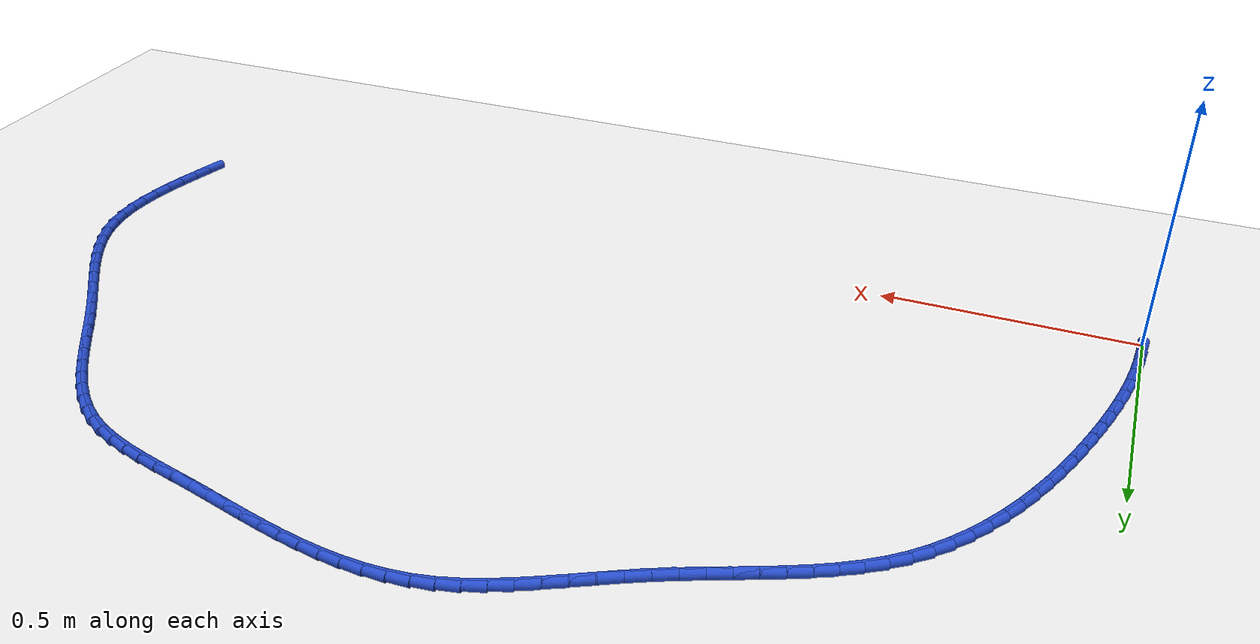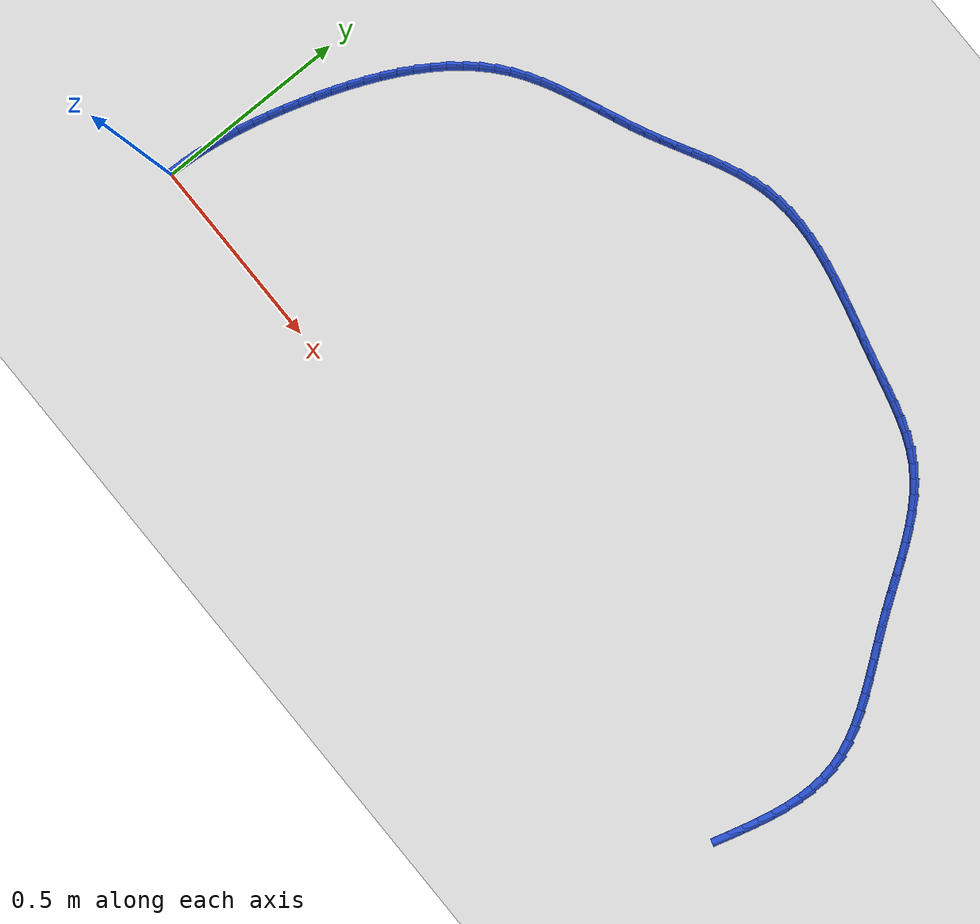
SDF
<sdf version="1.6">
 <world name="default">
  <model name="ground_plane">
   <static>1</static>
   <link name="link">
    <collision name="collision">
     <geometry><plane><normal>0 0 1</normal><size>100 100</size></plane></geometry>
     <surface><friction><ode><mu>100</mu><mu2>50</mu2></ode></friction></surface>
    </collision>
    <visual name="visual">
     <cast_shadows>0</cast_shadows>
     <geometry><plane><normal>0 0 1</normal><size>100 100</size></plane></geometry>
     <material>
      <script><uri>file://media/materials/scripts/gazebo.material</uri><name>Gazebo/WhiteGlow</name></script>
     </material>
    </visual>
   </link>
  </model>
  <model name="line">
   <link name="link_1">
    <pose>0.0013572058669911254 0.03960585726526232 0.01 0 1.57 1.4931692959205023</pose>
    <collision name="collision">
     <geometry><cylinder><radius>0.01</radius><length>0.08</length></cylinder></geometry>
    </collision>
    <visual name="visual">
     <material>
      <script><name>Gazebo/Blue</name><uri>file://media/materials/scripts/gazebo.material</uri></script>
     </material>
     <geometry><cylinder><radius>0.01</radius><length>0.08</length></cylinder></geometry>
    </visual>
   </link>
   <link name="link_2">
    <pose>0.004425729709717585 0.07905548884631912 0.01 0 1.57 1.4524673663735053</pose>
    <collision name="collision">
     <geometry><cylinder><radius>0.01</radius><length>0.08</length></cylinder></geometry>
    </collision>
    <visual name="visual">
     <material>
      <script><name>Gazebo/Blue</name><uri>file://media/materials/scripts/gazebo.material</uri></script>
     </material>
     <geometry><cylinder><radius>0.01</radius><length>0.08</length></cylinder></geometry>
    </visual>
   </link>
   <link name="link_3">
    <pose>0.00910084058042875 0.11838035537991416 0.01 0 1.57 1.4146294556732217</pose>
    <collision name="collision">
     <geometry><cylinder><radius>0.01</radius><length>0.08</length></cylinder></geometry>
    </collision>
    <visual name="visual">
     <material>
      <script><name>Gazebo/Blue</name><uri>file://media/materials/scripts/gazebo.material</uri></script>
     </material>
     <geometry><cylinder><radius>0.01</radius><length>0.08</length></cylinder></geometry>
    </visual>
   </link>
   <link name="link_4">
    <pose>0.015277807531374013 0.1576119175027912 0.01 0 1.57 1.3797876665798456</pose>
    <collision name="collision">
     <geometry><cylinder><radius>0.01</radius><length>0.08</length></cylinder></geometry>
    </collision>
    <visual name="visual">
     <material>
      <script><name>Gazebo/Blue</name><uri>file://media/materials/scripts/gazebo.material</uri></script>
     </material>
     <geometry><cylinder><radius>0.01</radius><length>0.08</length></cylinder></geometry>
    </visual>
   </link>
   <link name="link_5">
    <pose>0.022851899614802784 0.19678163585169395 0.01 0 1.57 1.3480199460998947</pose>
    <collision name="collision">
     <geometry><cylinder><radius>0.01</radius><length>0.08</length></cylinder></geometry>
    </collision>
    <visual name="visual">
     <material>
      <script><name>Gazebo/Blue</name><uri>file://media/materials/scripts/gazebo.material</uri></script>
     </material>
     <geometry><cylinder><radius>0.01</radius><length>0.08</length></cylinder></geometry>
    </visual>
   </link>
   <link name="link_6">
    <pose>0.03171838588296445 0.23592097106336612 0.01 0 1.57 1.3193586703346116</pose>
    <collision name="collision">
     <geometry><cylinder><radius>0.01</radius><length>0.08</length></cylinder></geometry>
    </collision>
    <visual name="visual">
     <material>
      <script><name>Gazebo/Blue</name><uri>file://media/materials/scripts/gazebo.material</uri></script>
     </material>
     <geometry><cylinder><radius>0.01</radius><length>0.08</length></cylinder></geometry>
    </visual>
   </link>
   <link name="link_7">
    <pose>0.04177253538810839 0.27506138377455147 0.01 0 1.57 1.2937996988057787</pose>
    <collision name="collision">
     <geometry><cylinder><radius>0.01</radius><length>0.08</length></cylinder></geometry>
    </collision>
    <visual name="visual">
     <material>
      <script><name>Gazebo/Blue</name><uri>file://media/materials/scripts/gazebo.material</uri></script>
     </material>
     <geometry><cylinder><radius>0.01</radius><length>0.08</length></cylinder></geometry>
    </visual>
   </link>
   <link name="link_8">
    <pose>0.05290961718248402 0.3142343346219937 0.01 0 1.57 1.2713111083744824</pose>
    <collision name="collision">
     <geometry><cylinder><radius>0.01</radius><length>0.08</length></cylinder></geometry>
    </collision>
    <visual name="visual">
     <material>
      <script><name>Gazebo/Blue</name><uri>file://media/materials/scripts/gazebo.material</uri></script>
     </material>
     <geometry><cylinder><radius>0.01</radius><length>0.08</length></cylinder></geometry>
    </visual>
   </link>
   <link name="link_9">
    <pose>0.06502490031834073 0.3534712842424365 0.01 0 1.57 1.251303823343375</pose>
    <collision name="collision">
     <geometry><cylinder><radius>0.01</radius><length>0.08</length></cylinder></geometry>
    </collision>
    <visual name="visual">
     <material>
      <script><name>Gazebo/Blue</name><uri>file://media/materials/scripts/gazebo.material</uri></script>
     </material>
     <geometry><cylinder><radius>0.01</radius><length>0.08</length></cylinder></geometry>
    </visual>
   </link>
   <link name="link_10">
    <pose>0.07803020135055229 0.39278285707645455 0.01 0 1.57 1.2297427222754966</pose>
    <collision name="collision">
     <geometry><cylinder><radius>0.01</radius><length>0.08</length></cylinder></geometry>
    </collision>
    <visual name="visual">
     <material>
      <script><name>Gazebo/Blue</name><uri>file://media/materials/scripts/gazebo.material</uri></script>
     </material>
     <geometry><cylinder><radius>0.01</radius><length>0.08</length></cylinder></geometry>
    </visual>
   </link>
   <link name="link_11">
    <pose>0.09195876311424779 0.43202678066815897 0.01 0 1.57 1.2046900887845857</pose>
    <collision name="collision">
     <geometry><cylinder><radius>0.01</radius><length>0.08</length></cylinder></geometry>
    </collision>
    <visual name="visual">
     <material>
      <script><name>Gazebo/Blue</name><uri>file://media/materials/scripts/gazebo.material</uri></script>
     </material>
     <geometry><cylinder><radius>0.01</radius><length>0.08</length></cylinder></geometry>
    </visual>
   </link>
   <link name="link_12">
    <pose>0.10689791344220063 0.4709926801025592 0.01 0 1.57 1.1758911015616755</pose>
    <collision name="collision">
     <geometry><cylinder><radius>0.01</radius><length>0.08</length></cylinder></geometry>
    </collision>
    <visual name="visual">
     <material>
      <script><name>Gazebo/Blue</name><uri>file://media/materials/scripts/gazebo.material</uri></script>
     </material>
     <geometry><cylinder><radius>0.01</radius><length>0.08</length></cylinder></geometry>
    </visual>
   </link>
   <link name="link_13">
    <pose>0.12293522811182156 0.5094698682590566 0.01 0 1.57 1.1430432878604047</pose>
    <collision name="collision">
     <geometry><cylinder><radius>0.01</radius><length>0.08</length></cylinder></geometry>
    </collision>
    <visual name="visual">
     <material>
      <script><name>Gazebo/Blue</name><uri>file://media/materials/scripts/gazebo.material</uri></script>
     </material>
     <geometry><cylinder><radius>0.01</radius><length>0.08</length></cylinder></geometry>
    </visual>
   </link>
   <link name="link_14">
    <pose>0.1401582829005215 0.547247658017053 0.01 0 1.57 1.1057930347961435</pose>
    <collision name="collision">
     <geometry><cylinder><radius>0.01</radius><length>0.08</length></cylinder></geometry>
    </collision>
    <visual name="visual">
     <material>
      <script><name>Gazebo/Blue</name><uri>file://media/materials/scripts/gazebo.material</uri></script>
     </material>
     <geometry><cylinder><radius>0.01</radius><length>0.08</length></cylinder></geometry>
    </visual>
   </link>
   <link name="link_15">
    <pose>0.15865465358571135 0.5841153622559501 0.01 0 1.57 1.063743657000141</pose>
    <collision name="collision">
     <geometry><cylinder><radius>0.01</radius><length>0.08</length></cylinder></geometry>
    </collision>
    <visual name="visual">
     <material>
      <script><name>Gazebo/Blue</name><uri>file://media/materials/scripts/gazebo.material</uri></script>
     </material>
     <geometry><cylinder><radius>0.01</radius><length>0.08</length></cylinder></geometry>
    </visual>
   </link>
   <link name="link_16">
    <pose>0.178511915944802 0.6198622938551496 0.01 0 1.57 1.0164696327096898</pose>
    <collision name="collision">
     <geometry><cylinder><radius>0.01</radius><length>0.08</length></cylinder></geometry>
    </collision>
    <visual name="visual">
     <material>
      <script><name>Gazebo/Blue</name><uri>file://media/materials/scripts/gazebo.material</uri></script>
     </material>
     <geometry><cylinder><radius>0.01</radius><length>0.08</length></cylinder></geometry>
    </visual>
   </link>
   <link name="link_17">
    <pose>0.1998176457552043 0.6542777656940533 0.01 0 1.57 0.9635403756393454</pose>
    <collision name="collision">
     <geometry><cylinder><radius>0.01</radius><length>0.08</length></cylinder></geometry>
    </collision>
    <visual name="visual">
     <material>
      <script><name>Gazebo/Blue</name><uri>file://media/materials/scripts/gazebo.material</uri></script>
     </material>
     <geometry><cylinder><radius>0.01</radius><length>0.08</length></cylinder></geometry>
    </visual>
   </link>
   <link name="link_18">
    <pose>0.222659418794329 0.6871510906520626 0.01 0 1.57 0.9045573867498293</pose>
    <collision name="collision">
     <geometry><cylinder><radius>0.01</radius><length>0.08</length></cylinder></geometry>
    </collision>
    <visual name="visual">
     <material>
      <script><name>Gazebo/Blue</name><uri>file://media/materials/scripts/gazebo.material</uri></script>
     </material>
     <geometry><cylinder><radius>0.01</radius><length>0.08</length></cylinder></geometry>
    </visual>
   </link>
   <link name="link_19">
    <pose>0.24712481083958712 0.7182715816085796 0.01 0 1.57 0.8392082929744844</pose>
    <collision name="collision">
     <geometry><cylinder><radius>0.01</radius><length>0.08</length></cylinder></geometry>
    </collision>
    <visual name="visual">
     <material>
      <script><name>Gazebo/Blue</name><uri>file://media/materials/scripts/gazebo.material</uri></script>
     </material>
     <geometry><cylinder><radius>0.01</radius><length>0.08</length></cylinder></geometry>
    </visual>
   </link>
   <link name="link_20">
    <pose>0.27330139766838957 0.7474285514430061 0.01 0 1.57 0.7673391775736776</pose>
    <collision name="collision">
     <geometry><cylinder><radius>0.01</radius><length>0.08</length></cylinder></geometry>
    </collision>
    <visual name="visual">
     <material>
      <script><name>Gazebo/Blue</name><uri>file://media/materials/scripts/gazebo.material</uri></script>
     </material>
     <geometry><cylinder><radius>0.01</radius><length>0.08</length></cylinder></geometry>
    </visual>
   </link>
   <link name="link_21">
    <pose>0.3012767550581471 0.7744113130347433 0.01 0 1.57 0.6890478365013732</pose>
    <collision name="collision">
     <geometry><cylinder><radius>0.01</radius><length>0.08</length></cylinder></geometry>
    </collision>
    <visual name="visual">
     <material>
      <script><name>Gazebo/Blue</name><uri>file://media/materials/scripts/gazebo.material</uri></script>
     </material>
     <geometry><cylinder><radius>0.01</radius><length>0.08</length></cylinder></geometry>
    </visual>
   </link>
   <link name="link_22">
    <pose>0.331138337856369 0.7990093918339223 0.01 0 1.57 0.6092066559635796</pose>
    <collision name="collision">
     <geometry><cylinder><radius>0.01</radius><length>0.08</length></cylinder></geometry>
    </collision>
    <visual name="visual">
     <material>
      <script><name>Gazebo/Blue</name><uri>file://media/materials/scripts/gazebo.material</uri></script>
     </material>
     <geometry><cylinder><radius>0.01</radius><length>0.08</length></cylinder></geometry>
    </visual>
   </link>
   <link name="link_23">
    <pose>0.36288817306078736 0.8211624784698073 0.01 0 1.57 0.5408208876783689</pose>
    <collision name="collision">
     <geometry><cylinder><radius>0.01</radius><length>0.08</length></cylinder></geometry>
    </collision>
    <visual name="visual">
     <material>
      <script><name>Gazebo/Blue</name><uri>file://media/materials/scripts/gazebo.material</uri></script>
     </material>
     <geometry><cylinder><radius>0.01</radius><length>0.08</length></cylinder></geometry>
    </visual>
   </link>
   <link name="link_24">
    <pose>0.3962931010205366 0.841223674951069 0.01 0 1.57 0.48636983674301204</pose>
    <collision name="collision">
     <geometry><cylinder><radius>0.01</radius><length>0.08</length></cylinder></geometry>
    </collision>
    <visual name="visual">
     <material>
      <script><name>Gazebo/Blue</name><uri>file://media/materials/scripts/gazebo.material</uri></script>
     </material>
     <geometry><cylinder><radius>0.01</radius><length>0.08</length></cylinder></geometry>
    </visual>
   </link>
   <link name="link_25">
    <pose>0.4310798386859627 0.8596166122459875 0.01 0 1.57 0.4456748754470123</pose>
    <collision name="collision">
     <geometry><cylinder><radius>0.01</radius><length>0.08</length></cylinder></geometry>
    </collision>
    <visual name="visual">
     <material>
      <script><name>Gazebo/Blue</name><uri>file://media/materials/scripts/gazebo.material</uri></script>
     </material>
     <geometry><cylinder><radius>0.01</radius><length>0.08</length></cylinder></geometry>
    </visual>
   </link>
   <link name="link_26">
    <pose>0.466975103007412 0.8767649213228433 0.01 0 1.57 0.4182843844014696</pose>
    <collision name="collision">
     <geometry><cylinder><radius>0.01</radius><length>0.08</length></cylinder></geometry>
    </collision>
    <visual name="visual">
     <material>
      <script><name>Gazebo/Blue</name><uri>file://media/materials/scripts/gazebo.material</uri></script>
     </material>
     <geometry><cylinder><radius>0.01</radius><length>0.08</length></cylinder></geometry>
    </visual>
   </link>
   <link name="link_27">
    <pose>0.5037056109352306 0.8930922331499167 0.01 0 1.57 0.4037009110901891</pose>
    <collision name="collision">
     <geometry><cylinder><radius>0.01</radius><length>0.08</length></cylinder></geometry>
    </collision>
    <visual name="visual">
     <material>
      <script><name>Gazebo/Blue</name><uri>file://media/materials/scripts/gazebo.material</uri></script>
     </material>
     <geometry><cylinder><radius>0.01</radius><length>0.08</length></cylinder></geometry>
    </visual>
   </link>
   <link name="link_28">
    <pose>0.5409980794197649 0.909022178695488 0.01 0 1.57 0.40151501372175835</pose>
    <collision name="collision">
     <geometry><cylinder><radius>0.01</radius><length>0.08</length></cylinder></geometry>
    </collision>
    <visual name="visual">
     <material>
      <script><name>Gazebo/Blue</name><uri>file://media/materials/scripts/gazebo.material</uri></script>
     </material>
     <geometry><cylinder><radius>0.01</radius><length>0.08</length></cylinder></geometry>
    </visual>
   </link>
   <link name="link_29">
    <pose>0.5785792254113608 0.9249783889278371 0.01 0 1.57 0.41146390240227254</pose>
    <collision name="collision">
     <geometry><cylinder><radius>0.01</radius><length>0.08</length></cylinder></geometry>
    </collision>
    <visual name="visual">
     <material>
      <script><name>Gazebo/Blue</name><uri>file://media/materials/scripts/gazebo.material</uri></script>
     </material>
     <geometry><cylinder><radius>0.01</radius><length>0.08</length></cylinder></geometry>
    </visual>
   </link>
   <link name="link_30">
    <pose>0.6161757658603645 0.9413844948152443 0.01 0 1.57 0.4334319336008633</pose>
    <collision name="collision">
     <geometry><cylinder><radius>0.01</radius><length>0.08</length></cylinder></geometry>
    </collision>
    <visual name="visual">
     <material>
      <script><name>Gazebo/Blue</name><uri>file://media/materials/scripts/gazebo.material</uri></script>
     </material>
     <geometry><cylinder><radius>0.01</radius><length>0.08</length></cylinder></geometry>
    </visual>
   </link>
   <link name="link_31">
    <pose>0.6535144177171223 0.95866412732599 0.01 0 1.57 0.4639782111188147</pose>
    <collision name="collision">
     <geometry><cylinder><radius>0.01</radius><length>0.08</length></cylinder></geometry>
    </collision>
    <visual name="visual">
     <material>
      <script><name>Gazebo/Blue</name><uri>file://media/materials/scripts/gazebo.material</uri></script>
     </material>
     <geometry><cylinder><radius>0.01</radius><length>0.08</length></cylinder></geometry>
    </visual>
   </link>
   <link name="link_32">
    <pose>0.6903745470027037 0.977109427033723 0.01 0 1.57 0.4855326255182563</pose>
    <collision name="collision">
     <geometry><cylinder><radius>0.01</radius><length>0.08</length></cylinder></geometry>
    </collision>
    <visual name="visual">
     <material>
      <script><name>Gazebo/Blue</name><uri>file://media/materials/scripts/gazebo.material</uri></script>
     </material>
     <geometry><cylinder><radius>0.01</radius><length>0.08</length></cylinder></geometry>
    </visual>
   </link>
   <link name="link_33">
    <pose>0.7268073362203776 0.9963336762526644 0.01 0 1.57 0.4925641272505168</pose>
    <collision name="collision">
     <geometry><cylinder><radius>0.01</radius><length>0.08</length></cylinder></geometry>
    </collision>
    <visual name="visual">
     <material>
      <script><name>Gazebo/Blue</name><uri>file://media/materials/scripts/gazebo.material</uri></script>
     </material>
     <geometry><cylinder><radius>0.01</radius><length>0.08</length></cylinder></geometry>
    </visual>
   </link>
   <link name="link_34">
    <pose>0.7629514318961249 1.0157317169959141 0.01 0 1.57 0.4849632190556711</pose>
    <collision name="collision">
     <geometry><cylinder><radius>0.01</radius><length>0.08</length></cylinder></geometry>
    </collision>
    <visual name="visual">
     <material>
      <script><name>Gazebo/Blue</name><uri>file://media/materials/scripts/gazebo.material</uri></script>
     </material>
     <geometry><cylinder><radius>0.01</radius><length>0.08</length></cylinder></geometry>
    </visual>
   </link>
   <link name="link_35">
    <pose>0.7989455222939997 1.0346982870362573 0.01 0 1.57 0.4622782496259544</pose>
    <collision name="collision">
     <geometry><cylinder><radius>0.01</radius><length>0.08</length></cylinder></geometry>
    </collision>
    <visual name="visual">
     <material>
      <script><name>Gazebo/Blue</name><uri>file://media/materials/scripts/gazebo.material</uri></script>
     </material>
     <geometry><cylinder><radius>0.01</radius><length>0.08</length></cylinder></geometry>
    </visual>
   </link>
   <link name="link_36">
    <pose>0.834928295678057 1.0526281241464797 0.01 0 1.57 0.42373507588505827</pose>
    <collision name="collision">
     <geometry><cylinder><radius>0.01</radius><length>0.08</length></cylinder></geometry>
    </collision>
    <visual name="visual">
     <material>
      <script><name>Gazebo/Blue</name><uri>file://media/materials/scripts/gazebo.material</uri></script>
     </material>
     <geometry><cylinder><radius>0.01</radius><length>0.08</length></cylinder></geometry>
    </visual>
   </link>
   <link name="link_37">
    <pose>0.8710384403123508 1.0689159660993663 0.01 0 1.57 0.3683643806551028</pose>
    <collision name="collision">
     <geometry><cylinder><radius>0.01</radius><length>0.08</length></cylinder></geometry>
    </collision>
    <visual name="visual">
     <material>
      <script><name>Gazebo/Blue</name><uri>file://media/materials/scripts/gazebo.material</uri></script>
     </material>
     <geometry><cylinder><radius>0.01</radius><length>0.08</length></cylinder></geometry>
    </visual>
   </link>
   <link name="link_38">
    <pose>0.9074146444609351 1.0829565506677024 0.01 0 1.57 0.2952881023247882</pose>
    <collision name="collision">
     <geometry><cylinder><radius>0.01</radius><length>0.08</length></cylinder></geometry>
    </collision>
    <visual name="visual">
     <material>
      <script><name>Gazebo/Blue</name><uri>file://media/materials/scripts/gazebo.material</uri></script>
     </material>
     <geometry><cylinder><radius>0.01</radius><length>0.08</length></cylinder></geometry>
    </visual>
   </link>
   <link name="link_39">
    <pose>0.9441955963878651 1.0941446156242733 0.01 0 1.57 0.20523916451723268</pose>
    <collision name="collision">
     <geometry><cylinder><radius>0.01</radius><length>0.08</length></cylinder></geometry>
    </collision>
    <visual name="visual">
     <material>
      <script><name>Gazebo/Blue</name><uri>file://media/materials/scripts/gazebo.material</uri></script>
     </material>
     <geometry><cylinder><radius>0.01</radius><length>0.08</length></cylinder></geometry>
    </visual>
   </link>
   <link name="link_40">
    <pose>0.9815124953438802 1.1019128869206494 0.01 0 1.57 0.11330357779717276</pose>
    <collision name="collision">
     <geometry><cylinder><radius>0.01</radius><length>0.08</length></cylinder></geometry>
    </collision>
    <visual name="visual">
     <material>
      <script><name>Gazebo/Blue</name><uri>file://media/materials/scripts/gazebo.material</uri></script>
     </material>
     <geometry><cylinder><radius>0.01</radius><length>0.08</length></cylinder></geometry>
    </visual>
   </link>
   <link name="link_41">
    <pose>1.0193922205260058 1.1062232561921732 0.01 0 1.57 0.03131134509089555</pose>
    <collision name="collision">
     <geometry><cylinder><radius>0.01</radius><length>0.08</length></cylinder></geometry>
    </collision>
    <visual name="visual">
     <material>
      <script><name>Gazebo/Blue</name><uri>file://media/materials/scripts/gazebo.material</uri></script>
     </material>
     <geometry><cylinder><radius>0.01</radius><length>0.08</length></cylinder></geometry>
    </visual>
   </link>
   <link name="link_42">
    <pose>1.0577851275103651 1.1074257827633074 0.01 0 1.57 -0.039776522073871674</pose>
    <collision name="collision">
     <geometry><cylinder><radius>0.01</radius><length>0.08</length></cylinder></geometry>
    </collision>
    <visual name="visual">
     <material>
      <script><name>Gazebo/Blue</name><uri>file://media/materials/scripts/gazebo.material</uri></script>
     </material>
     <geometry><cylinder><radius>0.01</radius><length>0.08</length></cylinder></geometry>
    </visual>
   </link>
   <link name="link_43">
    <pose>1.0966398100139014 1.1058794630265538 0.01 0 1.57 -0.09991234392856023</pose>
    <collision name="collision">
     <geometry><cylinder><radius>0.01</radius><length>0.08</length></cylinder></geometry>
    </collision>
    <visual name="visual">
     <material>
      <script><name>Gazebo/Blue</name><uri>file://media/materials/scripts/gazebo.material</uri></script>
     </material>
     <geometry><cylinder><radius>0.01</radius><length>0.08</length></cylinder></geometry>
    </visual>
   </link>
   <link name="link_44">
    <pose>1.1359048617535579 1.1019432933744149 0.01 0 1.57 -0.1494679709837708</pose>
    <collision name="collision">
     <geometry><cylinder><radius>0.01</radius><length>0.08</length></cylinder></geometry>
    </collision>
    <visual name="visual">
     <material>
      <script><name>Gazebo/Blue</name><uri>file://media/materials/scripts/gazebo.material</uri></script>
     </material>
     <geometry><cylinder><radius>0.01</radius><length>0.08</length></cylinder></geometry>
    </visual>
   </link>
   <link name="link_45">
    <pose>1.1755288764462786 1.095976270199393 0.01 0 1.57 -0.18901564419574585</pose>
    <collision name="collision">
     <geometry><cylinder><radius>0.01</radius><length>0.08</length></cylinder></geometry>
    </collision>
    <visual name="visual">
     <material>
      <script><name>Gazebo/Blue</name><uri>file://media/materials/scripts/gazebo.material</uri></script>
     </material>
     <geometry><cylinder><radius>0.01</radius><length>0.08</length></cylinder></geometry>
    </visual>
   </link>
   <link name="link_46">
    <pose>1.2154604478090048 1.0883373898939896 0.01 0 1.57 -0.2191700770469787</pose>
    <collision name="collision">
     <geometry><cylinder><radius>0.01</radius><length>0.08</length></cylinder></geometry>
    </collision>
    <visual name="visual">
     <material>
      <script><name>Gazebo/Blue</name><uri>file://media/materials/scripts/gazebo.material</uri></script>
     </material>
     <geometry><cylinder><radius>0.01</radius><length>0.08</length></cylinder></geometry>
    </visual>
   </link>
   <link name="link_47">
    <pose>1.2556481695586816 1.0793856488507079 0.01 0 1.57 -0.24048799674733226</pose>
    <collision name="collision">
     <geometry><cylinder><radius>0.01</radius><length>0.08</length></cylinder></geometry>
    </collision>
    <visual name="visual">
     <material>
      <script><name>Gazebo/Blue</name><uri>file://media/materials/scripts/gazebo.material</uri></script>
     </material>
     <geometry><cylinder><radius>0.01</radius><length>0.08</length></cylinder></geometry>
    </visual>
   </link>
   <link name="link_48">
    <pose>1.2960406354122502 1.0694800434620493 0.01 0 1.57 -0.25341058394167215</pose>
    <collision name="collision">
     <geometry><cylinder><radius>0.01</radius><length>0.08</length></cylinder></geometry>
    </collision>
    <visual name="visual">
     <material>
      <script><name>Gazebo/Blue</name><uri>file://media/materials/scripts/gazebo.material</uri></script>
     </material>
     <geometry><cylinder><radius>0.01</radius><length>0.08</length></cylinder></geometry>
    </visual>
   </link>
   <link name="link_49">
    <pose>1.3365864390866549 1.058979570120516 0.01 0 1.57 -0.25823398998272024</pose>
    <collision name="collision">
     <geometry><cylinder><radius>0.01</radius><length>0.08</length></cylinder></geometry>
    </collision>
    <visual name="visual">
     <material>
      <script><name>Gazebo/Blue</name><uri>file://media/materials/scripts/gazebo.material</uri></script>
     </material>
     <geometry><cylinder><radius>0.01</radius><length>0.08</length></cylinder></geometry>
    </visual>
   </link>
   <link name="link_50">
    <pose>1.377234174298839 1.0482432252186102 0.01 0 1.57 -0.2550968671294141</pose>
    <collision name="collision">
     <geometry><cylinder><radius>0.01</radius><length>0.08</length></cylinder></geometry>
    </collision>
    <visual name="visual">
     <material>
      <script><name>Gazebo/Blue</name><uri>file://media/materials/scripts/gazebo.material</uri></script>
     </material>
     <geometry><cylinder><radius>0.01</radius><length>0.08</length></cylinder></geometry>
    </visual>
   </link>
   <link name="link_51">
    <pose>1.4179324347657447 1.0376300051488345 0.01 0 1.57 -0.2447363298845203</pose>
    <collision name="collision">
     <geometry><cylinder><radius>0.01</radius><length>0.08</length></cylinder></geometry>
    </collision>
    <visual name="visual">
     <material>
      <script><name>Gazebo/Blue</name><uri>file://media/materials/scripts/gazebo.material</uri></script>
     </material>
     <geometry><cylinder><radius>0.01</radius><length>0.08</length></cylinder></geometry>
    </visual>
   </link>
   <link name="link_52">
    <pose>1.4586198008028184 1.0274686391502976 0.01 0 1.57 -0.24012418256702928</pose>
    <collision name="collision">
     <geometry><cylinder><radius>0.01</radius><length>0.08</length></cylinder></geometry>
    </collision>
    <visual name="visual">
     <material>
      <script><name>Gazebo/Blue</name><uri>file://media/materials/scripts/gazebo.material</uri></script>
     </material>
     <geometry><cylinder><radius>0.01</radius><length>0.08</length></cylinder></geometry>
    </visual>
   </link>
   <link name="link_53">
    <pose>1.4990623224808628 1.0175663554136716 0.01 0 1.57 -0.2525546629126688</pose>
    <collision name="collision">
     <geometry><cylinder><radius>0.01</radius><length>0.08</length></cylinder></geometry>
    </collision>
    <visual name="visual">
     <material>
      <script><name>Gazebo/Blue</name><uri>file://media/materials/scripts/gazebo.material</uri></script>
     </material>
     <geometry><cylinder><radius>0.01</radius><length>0.08</length></cylinder></geometry>
    </visual>
   </link>
   <link name="link_54">
    <pose>1.538880575153186 1.0072906608630607 0.01 0 1.57 -0.28321875968008486</pose>
    <collision name="collision">
     <geometry><cylinder><radius>0.01</radius><length>0.08</length></cylinder></geometry>
    </collision>
    <visual name="visual">
     <material>
      <script><name>Gazebo/Blue</name><uri>file://media/materials/scripts/gazebo.material</uri></script>
     </material>
     <geometry><cylinder><radius>0.01</radius><length>0.08</length></cylinder></geometry>
    </visual>
   </link>
   <link name="link_55">
    <pose>1.5776905812762383 0.9959953005427917 0.01 0 1.57 -0.3334584047757404</pose>
    <collision name="collision">
     <geometry><cylinder><radius>0.01</radius><length>0.08</length></cylinder></geometry>
    </collision>
    <visual name="visual">
     <material>
      <script><name>Gazebo/Blue</name><uri>file://media/materials/scripts/gazebo.material</uri></script>
     </material>
     <geometry><cylinder><radius>0.01</radius><length>0.08</length></cylinder></geometry>
    </visual>
   </link>
   <link name="link_56">
    <pose>1.6151083633064696 0.9830340194971919 0.01 0 1.57 -0.404856081282938</pose>
    <collision name="collision">
     <geometry><cylinder><radius>0.01</radius><length>0.08</length></cylinder></geometry>
    </collision>
    <visual name="visual">
     <material>
      <script><name>Gazebo/Blue</name><uri>file://media/materials/scripts/gazebo.material</uri></script>
     </material>
     <geometry><cylinder><radius>0.01</radius><length>0.08</length></cylinder></geometry>
    </visual>
   </link>
   <link name="link_57">
    <pose>1.6507499437003297 0.9677605627705878 0.01 0 1.57 -0.49863988104257734</pose>
    <collision name="collision">
     <geometry><cylinder><radius>0.01</radius><length>0.08</length></cylinder></geometry>
    </collision>
    <visual name="visual">
     <material>
      <script><name>Gazebo/Blue</name><uri>file://media/materials/scripts/gazebo.material</uri></script>
     </material>
     <geometry><cylinder><radius>0.01</radius><length>0.08</length></cylinder></geometry>
    </visual>
   </link>
   <link name="link_58">
    <pose>1.6842313450135862 0.9495286755501303 0.01 0 1.57 -0.6087094381813322</pose>
    <collision name="collision">
     <geometry><cylinder><radius>0.01</radius><length>0.08</length></cylinder></geometry>
    </collision>
    <visual name="visual">
     <material>
      <script><name>Gazebo/Blue</name><uri>file://media/materials/scripts/gazebo.material</uri></script>
     </material>
     <geometry><cylinder><radius>0.01</radius><length>0.08</length></cylinder></geometry>
    </visual>
   </link>
   <link name="link_59">
    <pose>1.7152966063489659 0.9278762006035781 0.01 0 1.57 -0.7097259664589791</pose>
    <collision name="collision">
     <geometry><cylinder><radius>0.01</radius><length>0.08</length></cylinder></geometry>
    </collision>
    <visual name="visual">
     <material>
      <script><name>Gazebo/Blue</name><uri>file://media/materials/scripts/gazebo.material</uri></script>
     </material>
     <geometry><cylinder><radius>0.01</radius><length>0.08</length></cylinder></geometry>
    </visual>
   </link>
   <link name="link_60">
    <pose>1.7441877843353424 0.903057167971652 0.01 0 1.57 -0.7941316065554348</pose>
    <collision name="collision">
     <geometry><cylinder><radius>0.01</radius><length>0.08</length></cylinder></geometry>
    </collision>
    <visual name="visual">
     <material>
      <script><name>Gazebo/Blue</name><uri>file://media/materials/scripts/gazebo.material</uri></script>
     </material>
     <geometry><cylinder><radius>0.01</radius><length>0.08</length></cylinder></geometry>
    </visual>
   </link>
   <link name="link_61">
    <pose>1.7712680236548386 0.8754997415720835 0.01 0 1.57 -0.8615605226695027</pose>
    <collision name="collision">
     <geometry><cylinder><radius>0.01</radius><length>0.08</length></cylinder></geometry>
    </collision>
    <visual name="visual">
     <material>
      <script><name>Gazebo/Blue</name><uri>file://media/materials/scripts/gazebo.material</uri></script>
     </material>
     <geometry><cylinder><radius>0.01</radius><length>0.08</length></cylinder></geometry>
    </visual>
   </link>
   <link name="link_62">
    <pose>1.7969004689895802 0.8456320853226063 0.01 0 1.57 -0.9126332693376479</pose>
    <collision name="collision">
     <geometry><cylinder><radius>0.01</radius><length>0.08</length></cylinder></geometry>
    </collision>
    <visual name="visual">
     <material>
      <script><name>Gazebo/Blue</name><uri>file://media/materials/scripts/gazebo.material</uri></script>
     </material>
     <geometry><cylinder><radius>0.01</radius><length>0.08</length></cylinder></geometry>
    </visual>
   </link>
   <link name="link_63">
    <pose>1.8214482650216912 0.8138823631409514 0.01 0 1.57 -0.948368195337595</pose>
    <collision name="collision">
     <geometry><cylinder><radius>0.01</radius><length>0.08</length></cylinder></geometry>
    </collision>
    <visual name="visual">
     <material>
      <script><name>Gazebo/Blue</name><uri>file://media/materials/scripts/gazebo.material</uri></script>
     </material>
     <geometry><cylinder><radius>0.01</radius><length>0.08</length></cylinder></geometry>
    </visual>
   </link>
   <link name="link_64">
    <pose>1.8452745564332957 0.7806787389448524 0.01 0 1.57 -0.9697947329129846</pose>
    <collision name="collision">
     <geometry><cylinder><radius>0.01</radius><length>0.08</length></cylinder></geometry>
    </collision>
    <visual name="visual">
     <material>
      <script><name>Gazebo/Blue</name><uri>file://media/materials/scripts/gazebo.material</uri></script>
     </material>
     <geometry><cylinder><radius>0.01</radius><length>0.08</length></cylinder></geometry>
    </visual>
   </link>
   <link name="link_65">
    <pose>1.8687424879065175 0.7464493766520407 0.01 0 1.57 -0.9777465847306135</pose>
    <collision name="collision">
     <geometry><cylinder><radius>0.01</radius><length>0.08</length></cylinder></geometry>
    </collision>
    <visual name="visual">
     <material>
      <script><name>Gazebo/Blue</name><uri>file://media/materials/scripts/gazebo.material</uri></script>
     </material>
     <geometry><cylinder><radius>0.01</radius><length>0.08</length></cylinder></geometry>
    </visual>
   </link>
   <link name="link_66">
    <pose>1.892215204123482 0.7116224401802488 0.01 0 1.57 -0.9727774201052961</pose>
    <collision name="collision">
     <geometry><cylinder><radius>0.01</radius><length>0.08</length></cylinder></geometry>
    </collision>
    <visual name="visual">
     <material>
      <script><name>Gazebo/Blue</name><uri>file://media/materials/scripts/gazebo.material</uri></script>
     </material>
     <geometry><cylinder><radius>0.01</radius><length>0.08</length></cylinder></geometry>
    </visual>
   </link>
   <link name="link_67">
    <pose>1.9160558497663136 0.6766260934472094 0.01 0 1.57 -0.9553386856616382</pose>
    <collision name="collision">
     <geometry><cylinder><radius>0.01</radius><length>0.08</length></cylinder></geometry>
    </collision>
    <visual name="visual">
     <material>
      <script><name>Gazebo/Blue</name><uri>file://media/materials/scripts/gazebo.material</uri></script>
     </material>
     <geometry><cylinder><radius>0.01</radius><length>0.08</length></cylinder></geometry>
    </visual>
   </link>
   <link name="link_68">
    <pose>1.9406207567551048 0.6418844425134815 0.01 0 1.57 -0.9352434066777803</pose>
    <collision name="collision">
     <geometry><cylinder><radius>0.01</radius><length>0.08</length></cylinder></geometry>
    </collision>
    <visual name="visual">
     <material>
      <script><name>Gazebo/Blue</name><uri>file://media/materials/scripts/gazebo.material</uri></script>
     </material>
     <geometry><cylinder><radius>0.01</radius><length>0.08</length></cylinder></geometry>
    </visual>
   </link>
   <link name="link_69">
    <pose>1.96590575556142 0.6076068694580767 0.01 0 1.57 -0.926781792273071</pose>
    <collision name="collision">
     <geometry><cylinder><radius>0.01</radius><length>0.08</length></cylinder></geometry>
    </collision>
    <visual name="visual">
     <material>
      <script><name>Gazebo/Blue</name><uri>file://media/materials/scripts/gazebo.material</uri></script>
     </material>
     <geometry><cylinder><radius>0.01</radius><length>0.08</length></cylinder></geometry>
    </visual>
   </link>
   <link name="link_70">
    <pose>1.9913740141914584 0.573685488826542 0.01 0 1.57 -0.9311460830651228</pose>
    <collision name="collision">
     <geometry><cylinder><radius>0.01</radius><length>0.08</length></cylinder></geometry>
    </collision>
    <visual name="visual">
     <material>
      <script><name>Gazebo/Blue</name><uri>file://media/materials/scripts/gazebo.material</uri></script>
     </material>
     <geometry><cylinder><radius>0.01</radius><length>0.08</length></cylinder></geometry>
    </visual>
   </link>
   <link name="link_71">
    <pose>2.016445802128246 0.5399868636951142 0.01 0 1.57 -0.9487967753553909</pose>
    <collision name="collision">
     <geometry><cylinder><radius>0.01</radius><length>0.08</length></cylinder></geometry>
    </collision>
    <visual name="visual">
     <material>
      <script><name>Gazebo/Blue</name><uri>file://media/materials/scripts/gazebo.material</uri></script>
     </material>
     <geometry><cylinder><radius>0.01</radius><length>0.08</length></cylinder></geometry>
    </visual>
   </link>
   <link name="link_72">
    <pose>2.0405413888548076 0.5063775571400304 0.01 0 1.57 -0.9806565306600971</pose>
    <collision name="collision">
     <geometry><cylinder><radius>0.01</radius><length>0.08</length></cylinder></geometry>
    </collision>
    <visual name="visual">
     <material>
      <script><name>Gazebo/Blue</name><uri>file://media/materials/scripts/gazebo.material</uri></script>
     </material>
     <geometry><cylinder><radius>0.01</radius><length>0.08</length></cylinder></geometry>
    </visual>
   </link>
   <link name="link_73">
    <pose>2.06308104385417 0.4727241322375277 0.01 0 1.57 -1.0280890743204334</pose>
    <collision name="collision">
     <geometry><cylinder><radius>0.01</radius><length>0.08</length></cylinder></geometry>
    </collision>
    <visual name="visual">
     <material>
      <script><name>Gazebo/Blue</name><uri>file://media/materials/scripts/gazebo.material</uri></script>
     </material>
     <geometry><cylinder><radius>0.01</radius><length>0.08</length></cylinder></geometry>
    </visual>
   </link>
   <link name="link_74">
    <pose>2.0834850366093582 0.4388931520638428 0.01 0 1.57 -1.0927820076134667</pose>
    <collision name="collision">
     <geometry><cylinder><radius>0.01</radius><length>0.08</length></cylinder></geometry>
    </collision>
    <visual name="visual">
     <material>
      <script><name>Gazebo/Blue</name><uri>file://media/materials/scripts/gazebo.material</uri></script>
     </material>
     <geometry><cylinder><radius>0.01</radius><length>0.08</length></cylinder></geometry>
    </visual>
   </link>
   <link name="link_75">
    <pose>2.101173636603397 0.4047511796952128 0.01 0 1.57 -1.1764370038476368</pose>
    <collision name="collision">
     <geometry><cylinder><radius>0.01</radius><length>0.08</length></cylinder></geometry>
    </collision>
    <visual name="visual">
     <material>
      <script><name>Gazebo/Blue</name><uri>file://media/materials/scripts/gazebo.material</uri></script>
     </material>
     <geometry><cylinder><radius>0.01</radius><length>0.08</length></cylinder></geometry>
    </visual>
   </link>
   <link name="link_76">
    <pose>2.1155671133193126 0.37016477820787497 0.01 0 1.57 -1.280139473548307</pose>
    <collision name="collision">
     <geometry><cylinder><radius>0.01</radius><length>0.08</length></cylinder></geometry>
    </collision>
    <visual name="visual">
     <material>
      <script><name>Gazebo/Blue</name><uri>file://media/materials/scripts/gazebo.material</uri></script>
     </material>
     <geometry><cylinder><radius>0.01</radius><length>0.08</length></cylinder></geometry>
    </visual>
   </link>
   <link name="link_77">
    <pose>2.1260857397742576 0.33500051122985425 0.01 0 1.57 -1.397978798253223</pose>
    <collision name="collision">
     <geometry><cylinder><radius>0.01</radius><length>0.08</length></cylinder></geometry>
    </collision>
    <visual name="visual">
     <material>
      <script><name>Gazebo/Blue</name><uri>file://media/materials/scripts/gazebo.material</uri></script>
     </material>
     <geometry><cylinder><radius>0.01</radius><length>0.08</length></cylinder></geometry>
    </visual>
   </link>
   <link name="link_78">
    <pose>2.1323428730846183 0.2991550889107484 0.01 0 1.57 -1.507321163866039</pose>
    <collision name="collision">
     <geometry><cylinder><radius>0.01</radius><length>0.08</length></cylinder></geometry>
    </collision>
    <visual name="visual">
     <material>
      <script><name>Gazebo/Blue</name><uri>file://media/materials/scripts/gazebo.material</uri></script>
     </material>
     <geometry><cylinder><radius>0.01</radius><length>0.08</length></cylinder></geometry>
    </visual>
   </link>
   <link name="link_79">
    <pose>2.134664020360335 0.26263641048940495 0.01 0 1.57 1.540524810168799</pose>
    <collision name="collision">
     <geometry><cylinder><radius>0.01</radius><length>0.08</length></cylinder></geometry>
    </collision>
    <visual name="visual">
     <material>
      <script><name>Gazebo/Blue</name><uri>file://media/materials/scripts/gazebo.material</uri></script>
     </material>
     <geometry><cylinder><radius>0.01</radius><length>0.08</length></cylinder></geometry>
    </visual>
   </link>
   <link name="link_80">
    <pose>2.133538835316215 0.22547800367011384 0.01 0 1.57 1.4631273067397454</pose>
    <collision name="collision">
     <geometry><cylinder><radius>0.01</radius><length>0.08</length></cylinder></geometry>
    </collision>
    <visual name="visual">
     <material>
      <script><name>Gazebo/Blue</name><uri>file://media/materials/scripts/gazebo.material</uri></script>
     </material>
     <geometry><cylinder><radius>0.01</radius><length>0.08</length></cylinder></geometry>
    </visual>
   </link>
   <link name="link_81">
    <pose>2.1294569716670644 0.1877133961571639 0.01 0 1.57 1.4016064136485191</pose>
    <collision name="collision">
     <geometry><cylinder><radius>0.01</radius><length>0.08</length></cylinder></geometry>
    </collision>
    <visual name="visual">
     <material>
      <script><name>Gazebo/Blue</name><uri>file://media/materials/scripts/gazebo.material</uri></script>
     </material>
     <geometry><cylinder><radius>0.01</radius><length>0.08</length></cylinder></geometry>
    </visual>
   </link>
   <link name="link_82">
    <pose>2.12290808312769 0.14937611565484407 0.01 0 1.57 1.3548976173835567</pose>
    <collision name="collision">
     <geometry><cylinder><radius>0.01</radius><length>0.08</length></cylinder></geometry>
    </collision>
    <visual name="visual">
     <material>
      <script><name>Gazebo/Blue</name><uri>file://media/materials/scripts/gazebo.material</uri></script>
     </material>
     <geometry><cylinder><radius>0.01</radius><length>0.08</length></cylinder></geometry>
    </visual>
   </link>
   <link name="link_83">
    <pose>2.1143818234128995 0.11049968986744449 0.01 0 1.57 1.3217956208738548</pose>
    <collision name="collision">
     <geometry><cylinder><radius>0.01</radius><length>0.08</length></cylinder></geometry>
    </collision>
    <visual name="visual">
     <material>
      <script><name>Gazebo/Blue</name><uri>file://media/materials/scripts/gazebo.material</uri></script>
     </material>
     <geometry><cylinder><radius>0.01</radius><length>0.08</length></cylinder></geometry>
    </visual>
   </link>
   <link name="link_84">
    <pose>2.1043678462375 0.07111764649925365 0.01 0 1.57 1.3012139013329418</pose>
    <collision name="collision">
     <geometry><cylinder><radius>0.01</radius><length>0.08</length></cylinder></geometry>
    </collision>
    <visual name="visual">
     <material>
      <script><name>Gazebo/Blue</name><uri>file://media/materials/scripts/gazebo.material</uri></script>
     </material>
     <geometry><cylinder><radius>0.01</radius><length>0.08</length></cylinder></geometry>
    </visual>
   </link>
   <link name="link_85">
    <pose>2.093355805316297 0.03126351325456156 0.01 0 1.57 1.292307327351006</pose>
    <collision name="collision">
     <geometry><cylinder><radius>0.01</radius><length>0.08</length></cylinder></geometry>
    </collision>
    <visual name="visual">
     <material>
      <script><name>Gazebo/Blue</name><uri>file://media/materials/scripts/gazebo.material</uri></script>
     </material>
     <geometry><cylinder><radius>0.01</radius><length>0.08</length></cylinder></geometry>
    </visual>
   </link>
   <link name="link_171">
    <pose>0.0013810844627635856 0.03958545164224389 0.01 0 1.57 1.5359217844332547</pose>
    <collision name="collision">
     <geometry><cylinder><radius>0.01</radius><length>0.08</length></cylinder></geometry>
    </collision>
    <visual name="visual">
     <material>
      <script><name>Gazebo/Blue</name><uri>file://media/materials/scripts/gazebo.material</uri></script>
     </material>
     <geometry><cylinder><radius>0.01</radius><length>0.08</length></cylinder></geometry>
    </visual>
   </link>
  </model>
 </world>
</sdf>
